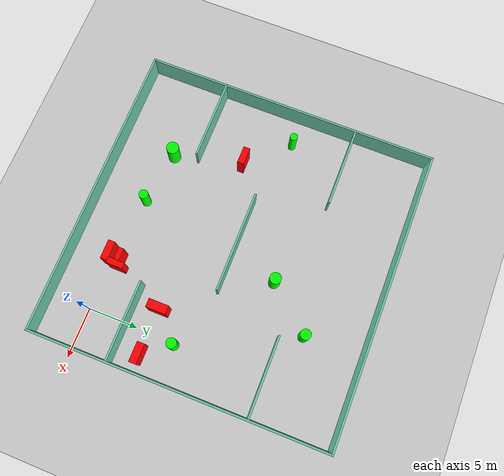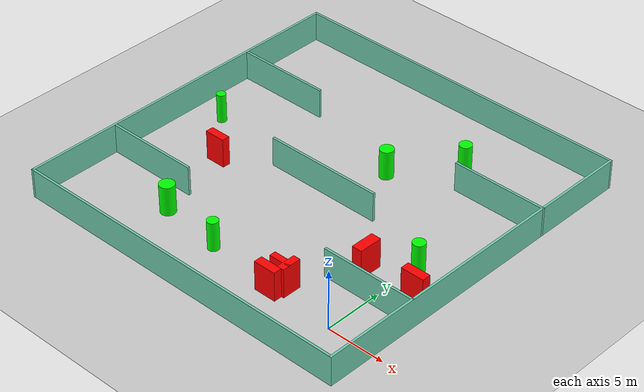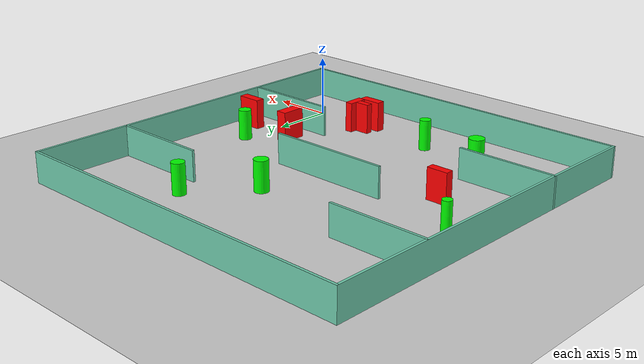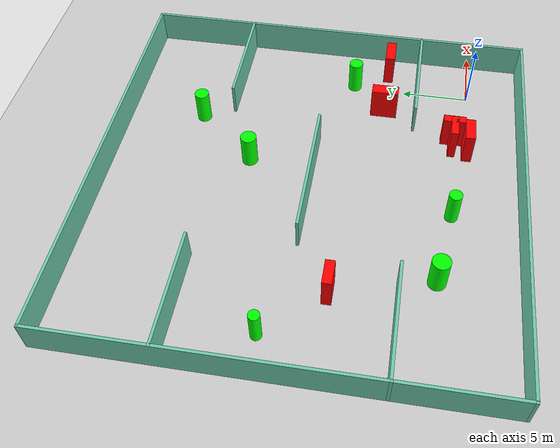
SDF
<sdf version="1.7">
 <world name="default">
  <light name="sun" type="directional">
   <pose>0 0 10 0 -0 0</pose>
   <diffuse>0.8 0.8 0.8 1</diffuse>
   <specular>0.2 0.2 0.2 1</specular>
   <attenuation>
    <range>1000</range>
    <constant>0.9</constant>
    <linear>0.01</linear>
    <quadratic>0.001</quadratic>
   </attenuation>
   <direction>-0.5 0.1 -0.9</direction>
   <spot><inner_angle>0</inner_angle><outer_angle>0</outer_angle><falloff>0</falloff></spot>
  </light>
  <model name="ground_plane">
   <static>1</static>
   <link name="link">
    <collision name="collision">
     <geometry><plane><normal>0 0 1</normal><size>100 100</size></plane></geometry>
     <surface>
      <contact><collide_bitmask>65535</collide_bitmask></contact>
      <friction><ode><mu>100</mu><mu2>50</mu2></ode></friction>
     </surface>
    </collision>
    <visual name="visual">
     <cast_shadows>0</cast_shadows>
     <geometry><plane><normal>0 0 1</normal><size>100 100</size></plane></geometry>
     <material>
      <script><uri>file://media/materials/scripts/gazebo.material</uri><name>Gazebo/Grey</name></script>
     </material>
    </visual>
   </link>
  </model>
  <gravity>0 0 -9.8</gravity>
  <magnetic_field>6e-06 2.3e-05 -4.2e-05</magnetic_field>
  <atmosphere type="adiabatic"/>
  <physics type="ode">
   <max_step_size>0.001</max_step_size>
   <real_time_factor>1</real_time_factor>
   <real_time_update_rate>1000</real_time_update_rate>
  </physics>
  <scene><ambient>0.4 0.4 0.4 1</ambient><background>0.7 0.7 0.7 1</background><shadows>1</shadows></scene>
  <spherical_coordinates>
   <surface_model>EARTH_WGS84</surface_model>
   <latitude_deg>0</latitude_deg>
   <longitude_deg>0</longitude_deg>
   <elevation>0</elevation>
   <heading_deg>0</heading_deg>
  </spherical_coordinates>
  <model name="my_base_walls">
   <link name="Wall_10">
    <collision name="Wall_10_Collision">
     <geometry><box><size>8.2 0.2 2.5</size></box></geometry>
     <pose>0 0 1.25 0 -0 0</pose>
    </collision>
    <visual name="Wall_10_Visual">
     <pose>0 0 1.25 0 -0 0</pose>
     <geometry><box><size>8.2 0.2 2.5</size></box></geometry>
     <material>
      <script><uri>file://media/materials/scripts/gazebo.material</uri><name>Gazebo/Grey</name></script>
      <ambient>0.435294 0.796078 0.67451 1</ambient>
     </material>
     <meta><layer>0</layer></meta>
    </visual>
    <pose>-11 -7 0 0 -0 0</pose>
   </link>
   <link name="Wall_12">
    <collision name="Wall_12_Collision">
     <geometry><box><size>8.2 0.2 2.5</size></box></geometry>
     <pose>0 0 1.25 0 -0 0</pose>
    </collision>
    <visual name="Wall_12_Visual">
     <pose>0 0 1.25 0 -0 0</pose>
     <geometry><box><size>8.2 0.2 2.5</size></box></geometry>
     <material>
      <script><uri>file://media/materials/scripts/gazebo.material</uri><name>Gazebo/Grey</name></script>
      <ambient>0.435294 0.796078 0.67451 1</ambient>
     </material>
     <meta><layer>0</layer></meta>
    </visual>
    <pose>-11 7 0 0 -0 0</pose>
   </link>
   <link name="Wall_14">
    <collision name="Wall_14_Collision">
     <geometry><box><size>8.2 0.2 2.5</size></box></geometry>
     <pose>0 0 1.25 0 -0 0</pose>
    </collision>
    <visual name="Wall_14_Visual">
     <pose>0 0 1.25 0 -0 0</pose>
     <geometry><box><size>8.2 0.2 2.5</size></box></geometry>
     <material>
      <script><uri>file://media/materials/scripts/gazebo.material</uri><name>Gazebo/Grey</name></script>
      <ambient>0.435294 0.796078 0.67451 1</ambient>
     </material>
     <meta><layer>0</layer></meta>
    </visual>
    <pose>11 7 0 0 -0 3.14159</pose>
   </link>
   <link name="Wall_16">
    <collision name="Wall_16_Collision">
     <geometry><box><size>10.2 0.2 2.5</size></box></geometry>
     <pose>0 0 1.25 0 -0 0</pose>
    </collision>
    <visual name="Wall_16_Visual">
     <pose>0 0 1.25 0 -0 0</pose>
     <geometry><box><size>10.2 0.2 2.5</size></box></geometry>
     <material>
      <script><uri>file://media/materials/scripts/gazebo.material</uri><name>Gazebo/Grey</name></script>
      <ambient>0.435294 0.796078 0.67451 1</ambient>
     </material>
     <meta><layer>0</layer></meta>
    </visual>
    <pose>0 0 0 0 -0 3.14159</pose>
   </link>
   <link name="Wall_2">
    <collision name="Wall_2_Collision">
     <geometry><box><size>30.2 0.2 2.5</size></box></geometry>
     <pose>0 0 1.25 0 -0 0</pose>
    </collision>
    <visual name="Wall_2_Visual">
     <pose>0 0 1.25 0 -0 0</pose>
     <geometry><box><size>30.2 0.2 2.5</size></box></geometry>
     <material>
      <script><uri>file://media/materials/scripts/gazebo.material</uri><name>Gazebo/Grey</name></script>
      <ambient>0.435294 0.796078 0.67451 1</ambient>
     </material>
     <meta><layer>0</layer></meta>
    </visual>
    <pose>0 -15 0 0 -0 3.14159</pose>
   </link>
   <link name="Wall_3">
    <collision name="Wall_3_Collision">
     <geometry><box><size>30.2 0.2 2.5</size></box></geometry>
     <pose>0 0 1.25 0 -0 0</pose>
    </collision>
    <visual name="Wall_3_Visual">
     <pose>0 0 1.25 0 -0 0</pose>
     <geometry><box><size>30.2 0.2 2.5</size></box></geometry>
     <material>
      <script><uri>file://media/materials/scripts/gazebo.material</uri><name>Gazebo/Grey</name></script>
      <ambient>0.435294 0.796078 0.67451 1</ambient>
     </material>
     <meta><layer>0</layer></meta>
    </visual>
    <pose>-15 0 0 0 -0 1.5708</pose>
   </link>
   <link name="Wall_4">
    <collision name="Wall_4_Collision">
     <geometry><box><size>30.2 0.2 2.5</size></box></geometry>
     <pose>0 0 1.25 0 -0 0</pose>
    </collision>
    <visual name="Wall_4_Visual">
     <pose>0 0 1.25 0 -0 0</pose>
     <geometry><box><size>30.2 0.2 2.5</size></box></geometry>
     <material>
      <script><uri>file://media/materials/scripts/gazebo.material</uri><name>Gazebo/Grey</name></script>
      <ambient>0.435294 0.796078 0.67451 1</ambient>
     </material>
     <meta><layer>0</layer></meta>
    </visual>
    <pose>0 15 0 0 -0 0</pose>
   </link>
   <link name="Wall_6">
    <collision name="Wall_6_Collision">
     <geometry><box><size>30.2 0.2 2.5</size></box></geometry>
     <pose>0 0 1.25 0 -0 0</pose>
    </collision>
    <visual name="Wall_6_Visual">
     <pose>0 0 1.25 0 -0 0</pose>
     <geometry><box><size>30.2 0.2 2.5</size></box></geometry>
     <material>
      <script><uri>file://media/materials/scripts/gazebo.material</uri><name>Gazebo/Grey</name></script>
      <ambient>0.435294 0.796078 0.67451 1</ambient>
     </material>
     <meta><layer>0</layer></meta>
    </visual>
    <pose>15 0 0 0 -0 1.5708</pose>
   </link>
   <link name="Wall_8">
    <collision name="Wall_8_Collision">
     <geometry><box><size>8.2 0.2 2.5</size></box></geometry>
     <pose>0 0 1.25 0 -0 0</pose>
    </collision>
    <visual name="Wall_8_Visual">
     <pose>0 0 1.25 0 -0 0</pose>
     <geometry><box><size>8.2 0.2 2.5</size></box></geometry>
     <material>
      <script><uri>file://media/materials/scripts/gazebo.material</uri><name>Gazebo/Grey</name></script>
      <ambient>0.435294 0.796078 0.67451 1</ambient>
     </material>
     <meta><layer>0</layer></meta>
    </visual>
    <pose>11 -7 0 0 -0 3.14159</pose>
   </link>
   <static>1</static>
   <pose>-11 11 0 0 -0 0</pose>
  </model>
  <model name="cylinder1">
   <static>1</static>
   <link name="link">
    <inertial>
     <mass>1</mass>
     <inertia><ixx>0.5</ixx><ixy>0</ixy><ixz>0</ixz><iyy>0.5</iyy><iyz>0</iyz><izz>1</izz></inertia>
    </inertial>
    <collision name="collision">
     <geometry><cylinder><radius>0.6303678858711885</radius><length>2.5</length></cylinder></geometry>
    </collision>
    <visual name="visual">
     <geometry><cylinder><radius>0.6303678858711885</radius><length>2.5</length></cylinder></geometry>
     <material>
      <ambient>0 1 0 1</ambient>
      <diffuse>0 1 0 1</diffuse>
      <specular>0.1 0.1 0.1 1</specular>
      <emissive>0 0 0 0</emissive>
     </material>
    </visual>
   </link>
   <pose>-17.60565533102261 1.5301986618987504 1.25 0 0 0</pose>
  </model>
  <model name="cylinder2">
   <static>1</static>
   <link name="link">
    <inertial>
     <mass>1</mass>
     <inertia><ixx>0.5</ixx><ixy>0</ixy><ixz>0</ixz><iyy>0.5</iyy><iyz>0</iyz><izz>1</izz></inertia>
    </inertial>
    <collision name="collision">
     <geometry><cylinder><radius>0.5763122099287914</radius><length>2.5</length></cylinder></geometry>
    </collision>
    <visual name="visual">
     <geometry><cylinder><radius>0.5763122099287914</radius><length>2.5</length></cylinder></geometry>
     <material>
      <ambient>0 1 0 1</ambient>
      <diffuse>0 1 0 1</diffuse>
      <specular>0.1 0.1 0.1 1</specular>
      <emissive>0 0 0 0</emissive>
     </material>
    </visual>
   </link>
   <pose>-8.967740025878737 15.764344215603167 1.25 0 0 0</pose>
  </model>
  <model name="cylinder3">
   <static>1</static>
   <link name="link">
    <inertial>
     <mass>1</mass>
     <inertia><ixx>0.5</ixx><ixy>0</ixy><ixz>0</ixz><iyy>0.5</iyy><iyz>0</iyz><izz>1</izz></inertia>
    </inertial>
    <collision name="collision">
     <geometry><cylinder><radius>0.5202987646495494</radius><length>2.5</length></cylinder></geometry>
    </collision>
    <visual name="visual">
     <geometry><cylinder><radius>0.5202987646495494</radius><length>2.5</length></cylinder></geometry>
     <material>
      <ambient>0 1 0 1</ambient>
      <diffuse>0 1 0 1</diffuse>
      <specular>0.1 0.1 0.1 1</specular>
      <emissive>0 0 0 0</emissive>
     </material>
    </visual>
   </link>
   <pose>0.21707368050104492 8.96597030478097 1.25 0 0 0</pose>
  </model>
  <model name="cylinder4">
   <static>1</static>
   <link name="link">
    <inertial>
     <mass>1</mass>
     <inertia><ixx>0.5</ixx><ixy>0</ixy><ixz>0</ixz><iyy>0.5</iyy><iyz>0</iyz><izz>1</izz></inertia>
    </inertial>
    <collision name="collision">
     <geometry><cylinder><radius>0.5297745097978767</radius><length>2.5</length></cylinder></geometry>
    </collision>
    <visual name="visual">
     <geometry><cylinder><radius>0.5297745097978767</radius><length>2.5</length></cylinder></geometry>
     <material>
      <ambient>0 1 0 1</ambient>
      <diffuse>0 1 0 1</diffuse>
      <specular>0.1 0.1 0.1 1</specular>
      <emissive>0 0 0 0</emissive>
     </material>
    </visual>
   </link>
   <pose>-5.063123429180523 20.218745871431523 1.25 0 0 0</pose>
  </model>
  <model name="cylinder5">
   <static>1</static>
   <link name="link">
    <inertial>
     <mass>1</mass>
     <inertia><ixx>0.5</ixx><ixy>0</ixy><ixz>0</ixz><iyy>0.5</iyy><iyz>0</iyz><izz>1</izz></inertia>
    </inertial>
    <collision name="collision">
     <geometry><cylinder><radius>0.38402287478502645</radius><length>2.5</length></cylinder></geometry>
    </collision>
    <visual name="visual">
     <geometry><cylinder><radius>0.38402287478502645</radius><length>2.5</length></cylinder></geometry>
     <material>
      <ambient>0 1 0 1</ambient>
      <diffuse>0 1 0 1</diffuse>
      <specular>0.1 0.1 0.1 1</specular>
      <emissive>0 0 0 0</emissive>
     </material>
    </visual>
   </link>
   <pose>-23.152827486808732 12.398362221642431 1.25 0 0 0</pose>
  </model>
  <model name="cylinder6">
   <static>1</static>
   <link name="link">
    <inertial>
     <mass>1</mass>
     <inertia><ixx>0.5</ixx><ixy>0</ixy><ixz>0</ixz><iyy>0.5</iyy><iyz>0</iyz><izz>1</izz></inertia>
    </inertial>
    <collision name="collision">
     <geometry><cylinder><radius>0.4651956194774545</radius><length>2.5</length></cylinder></geometry>
    </collision>
    <visual name="visual">
     <geometry><cylinder><radius>0.4651956194774545</radius><length>2.5</length></cylinder></geometry>
     <material>
      <ambient>0 1 0 1</ambient>
      <diffuse>0 1 0 1</diffuse>
      <specular>0.1 0.1 0.1 1</specular>
      <emissive>0 0 0 0</emissive>
     </material>
    </visual>
   </link>
   <pose>-12.066236796062881 0.7935196775441895 1.25 0 0 0</pose>
  </model>
  <model name="box1">
   <static>1</static>
   <link name="link">
    <inertial>
     <mass>1</mass>
     <inertia><ixx>0.083</ixx><ixy>0</ixy><ixz>0</ixz><iyy>0.083</iyy><iyz>0</iyz><izz>0.083</izz></inertia>
    </inertial>
    <collision name="collision">
     <geometry><box><size>1.9298986582255828 0.7243569055838905 2.5</size></box></geometry>
    </collision>
    <visual name="visual">
     <geometry><box><size>1.9298986582255828 0.7243569055838905 2.5</size></box></geometry>
     <material>
      <ambient>1 0 0 1</ambient>
      <diffuse>1 0 0 1</diffuse>
      <specular>0.1 0.1 0.1 1</specular>
      <emissive>0 0 0 0</emissive>
     </material>
    </visual>
    <sensor name="my_contact" type="contact">
     <contact><collision>box_collision</collision><topic>__default_topic__</topic></contact>
    </sensor>
   </link>
   <pose>-5.659651706221128 -0.11401494793739708 1.25 0 0 0</pose>
  </model>
  <model name="box2">
   <static>1</static>
   <link name="link">
    <inertial>
     <mass>1</mass>
     <inertia><ixx>0.083</ixx><ixy>0</ixy><ixz>0</ixz><iyy>0.083</iyy><iyz>0</iyz><izz>0.083</izz></inertia>
    </inertial>
    <collision name="collision">
     <geometry><box><size>2.0062007282645693 0.7486450597863317 2.5</size></box></geometry>
    </collision>
    <visual name="visual">
     <geometry><box><size>2.0062007282645693 0.7486450597863317 2.5</size></box></geometry>
     <material>
      <ambient>1 0 0 1</ambient>
      <diffuse>1 0 0 1</diffuse>
      <specular>0.1 0.1 0.1 1</specular>
      <emissive>0 0 0 0</emissive>
     </material>
    </visual>
    <sensor name="my_contact" type="contact">
     <contact><collision>box_collision</collision><topic>__default_topic__</topic></contact>
    </sensor>
   </link>
   <pose>2.1807504219250546 6.365264461682177 1.25 0 0 0</pose>
  </model>
  <model name="box3">
   <static>1</static>
   <link name="link">
    <inertial>
     <mass>1</mass>
     <inertia><ixx>0.083</ixx><ixy>0</ixy><ixz>0</ixz><iyy>0.083</iyy><iyz>0</iyz><izz>0.083</izz></inertia>
    </inertial>
    <collision name="collision">
     <geometry><box><size>1.7635410279847126 0.6607188640858273 2.5</size></box></geometry>
    </collision>
    <visual name="visual">
     <geometry><box><size>1.7635410279847126 0.6607188640858273 2.5</size></box></geometry>
     <material>
      <ambient>1 0 0 1</ambient>
      <diffuse>1 0 0 1</diffuse>
      <specular>0.1 0.1 0.1 1</specular>
      <emissive>0 0 0 0</emissive>
     </material>
    </visual>
    <sensor name="my_contact" type="contact">
     <contact><collision>box_collision</collision><topic>__default_topic__</topic></contact>
    </sensor>
   </link>
   <pose>-19.456056159100243 8.438081140892997 1.25 0 0 0</pose>
  </model>
  <model name="box4">
   <static>1</static>
   <link name="link">
    <inertial>
     <mass>1</mass>
     <inertia><ixx>0.083</ixx><ixy>0</ixy><ixz>0</ixz><iyy>0.083</iyy><iyz>0</iyz><izz>0.083</izz></inertia>
    </inertial>
    <collision name="collision">
     <geometry><box><size>0.6160908720151799 1.6516552515025316 2.5</size></box></geometry>
    </collision>
    <visual name="visual">
     <geometry><box><size>0.6160908720151799 1.6516552515025316 2.5</size></box></geometry>
     <material>
      <ambient>1 0 0 1</ambient>
      <diffuse>1 0 0 1</diffuse>
      <specular>0.1 0.1 0.1 1</specular>
      <emissive>0 0 0 0</emissive>
     </material>
    </visual>
    <sensor name="my_contact" type="contact">
     <contact><collision>box_collision</collision><topic>__default_topic__</topic></contact>
    </sensor>
   </link>
   <pose>-4.79369611431996 1.0478574434131023 1.25 0 0 0</pose>
  </model>
  <model name="box5">
   <static>1</static>
   <link name="link">
    <inertial>
     <mass>1</mass>
     <inertia><ixx>0.083</ixx><ixy>0</ixy><ixz>0</ixz><iyy>0.083</iyy><iyz>0</iyz><izz>0.083</izz></inertia>
    </inertial>
    <collision name="collision">
     <geometry><box><size>1.822382558662654 0.5387118197770406 2.5</size></box></geometry>
    </collision>
    <visual name="visual">
     <geometry><box><size>1.822382558662654 0.5387118197770406 2.5</size></box></geometry>
     <material>
      <ambient>1 0 0 1</ambient>
      <diffuse>1 0 0 1</diffuse>
      <specular>0.1 0.1 0.1 1</specular>
      <emissive>0 0 0 0</emissive>
     </material>
    </visual>
    <sensor name="my_contact" type="contact">
     <contact><collision>box_collision</collision><topic>__default_topic__</topic></contact>
    </sensor>
   </link>
   <pose>-5.418580678127567 1.015709318742278 1.25 0 0 0</pose>
  </model>
  <model name="box6">
   <static>1</static>
   <link name="link">
    <inertial>
     <mass>1</mass>
     <inertia><ixx>0.083</ixx><ixy>0</ixy><ixz>0</ixz><iyy>0.083</iyy><iyz>0</iyz><izz>0.083</izz></inertia>
    </inertial>
    <collision name="collision">
     <geometry><box><size>0.8750629263253331 2.0083867351314773 2.5</size></box></geometry>
    </collision>
    <visual name="visual">
     <geometry><box><size>0.8750629263253331 2.0083867351314773 2.5</size></box></geometry>
     <material>
      <ambient>1 0 0 1</ambient>
      <diffuse>1 0 0 1</diffuse>
      <specular>0.1 0.1 0.1 1</specular>
      <emissive>0 0 0 0</emissive>
     </material>
    </visual>
    <sensor name="my_contact" type="contact">
     <contact><collision>box_collision</collision><topic>__default_topic__</topic></contact>
    </sensor>
   </link>
   <pose>-2.4302478318937943 6.412628434223841 1.25 0 0 0</pose>
  </model>
 </world>
</sdf>
